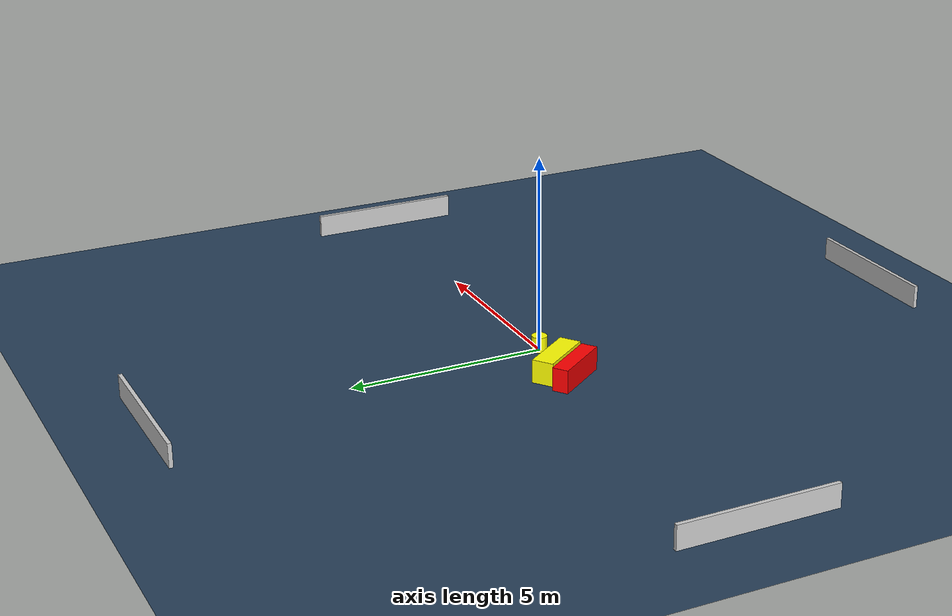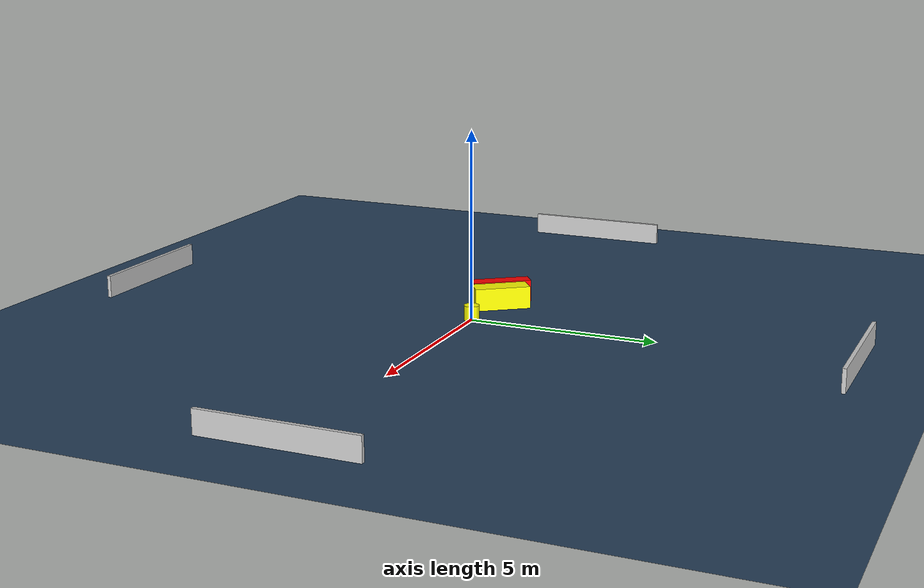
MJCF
<?xml version="1.0" ?>
<mujoco model="generated_environment">
  <option timestep="0.01" integrator="RK4" cone="elliptic"/>
  <default>
    <geom density="1"/>
  </default>
  <asset>
    <texture builtin="gradient" height="3072" name="skybox" rgb1="0.3 0.5 0.7" rgb2="0 0 0" type="skybox" width="512"/>
    <texture builtin="checker" height="300" name="groundplane" rgb1="0.2 0.3 0.4" rgb2="0.1 0.2 0.3" type="2d" width="300"/>
    <material name="groundplane" reflectance="0.2" texrepeat="5 5" texture="groundplane"/>
  </asset>
  <worldbody>
    <light dir="0 0 -1" directional="true" pos="0 0 1.5"/>
    <geom condim="3" friction="0.5 0.005 0.001" material="groundplane" name="floor" pos="0 0 0" size="0 0 0.05" type="plane"/>
    <body name="walls">
      <geom name="wall_1" condim="4" pos="-10.0 0.0 0.3" rgba="0.800000011920929 0.800000011920929 0.800000011920929 1.0" size="0.05 2.0 0.3" type="box"/>
      <geom name="wall_2" condim="4" pos="10.0 0.0 0.3" rgba="0.800000011920929 0.800000011920929 0.800000011920929 1.0" size="0.05 2.0 0.3" type="box"/>
      <geom name="wall_3" condim="4" pos="0.0 -10.0 0.3" rgba="0.800000011920929 0.800000011920929 0.800000011920929 1.0" size="2.0 0.05 0.3" type="box"/>
      <geom name="wall_4" condim="4" pos="0.0 10.0 0.3" rgba="0.800000011920929 0.800000011920929 0.800000011920929 1.0" size="2.0 0.05 0.3" type="box"/>
    </body>
    <body name="robot">
      <joint name="joint_x" type="slide" pos="0 0 0" axis="1 0 0"/>
      <joint name="joint_y" type="slide" pos="0 0 0" axis="0 1 0"/>
      <geom name="robot" type="cylinder" pos="0.0 0.0 0.2" size="0.2 0.2 0.0" mass="5.0" friction="1.0 0.005 0.0001" condim="4" rgba="1.0 1.0 0.0 1.0"/>
    </body>
    <body name="obstacle_1_movable">
      <geom name="obstacle_1_movable" condim="4" pos="-1.402428825665289 0.24245353340182574 0.3" euler="0 0 126.18977300519992" friction="0.0 0.005 0.001" rgba="1.0 1.0 0.0 1.0" size="0.7488444060827901 0.27342685648352083 0.3" type="box" mass="0.1"/>
      <joint type="free"/>
    </body>
    <body name="obstacle_2_static">
      <geom name="obstacle_2_static" condim="4" pos="-1.9403357879993615 0.02512009349854107 0.3" euler="0 0 216.22900495865446" friction="0.0 0.005 0.001" rgba="1.0 0.0 0.0 1.0" size="0.2061271377296915 0.792643324202503 0.3" type="box"/>
    </body>
  </worldbody>
  <actuator>
    <motor name="actuator_x" joint="joint_x" gear="1" ctrlrange="-1 1"/>
    <motor name="actuator_y" joint="joint_y" gear="1" ctrlrange="-1 1"/>
  </actuator>
</mujoco>
